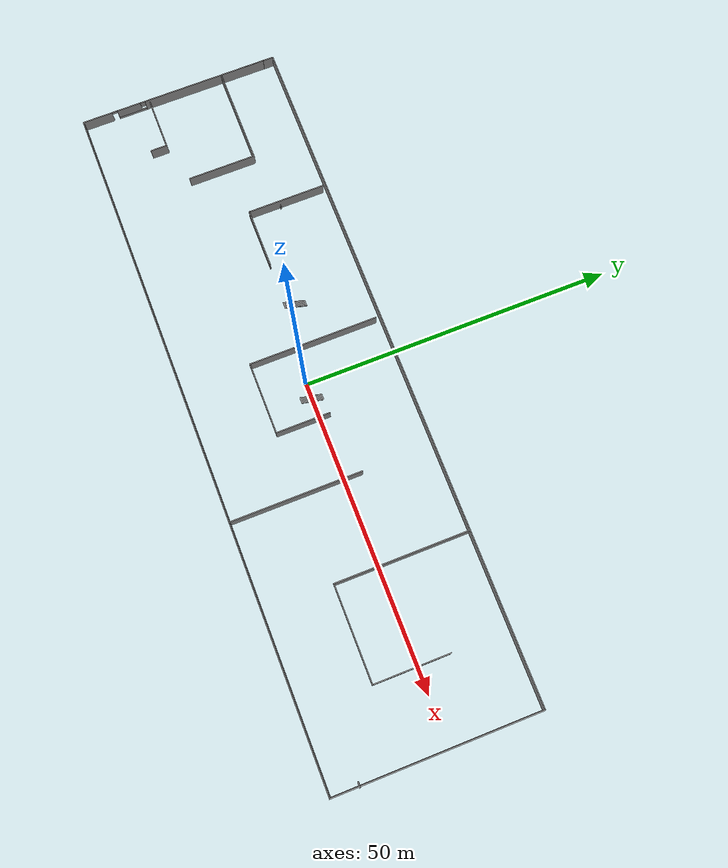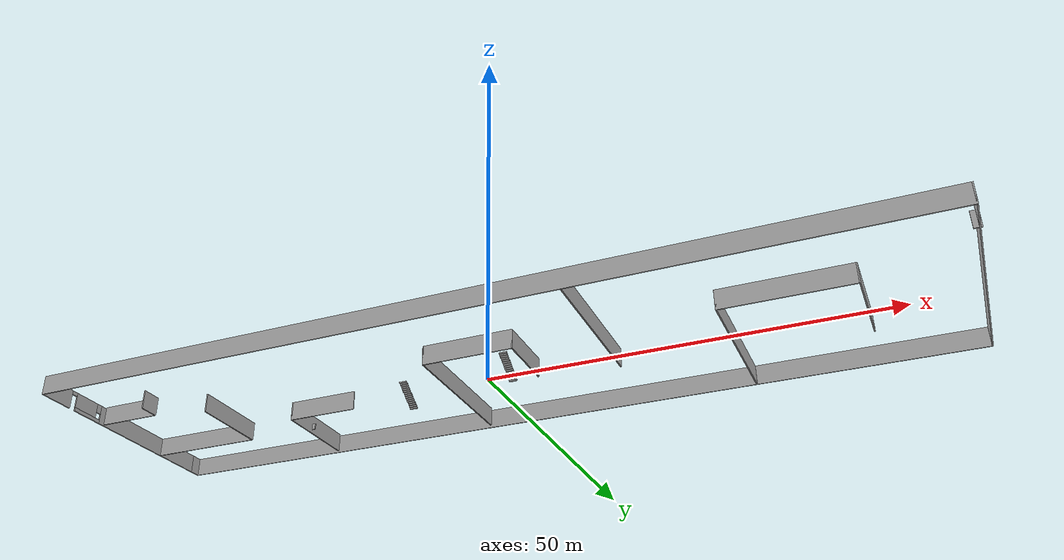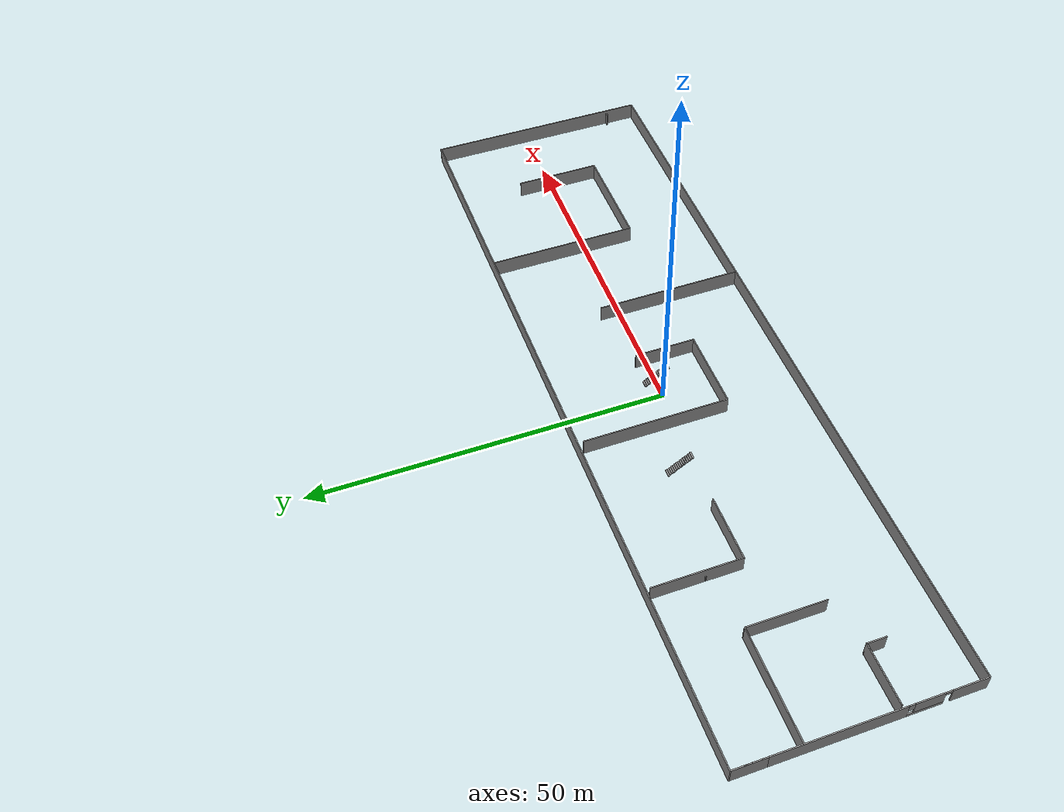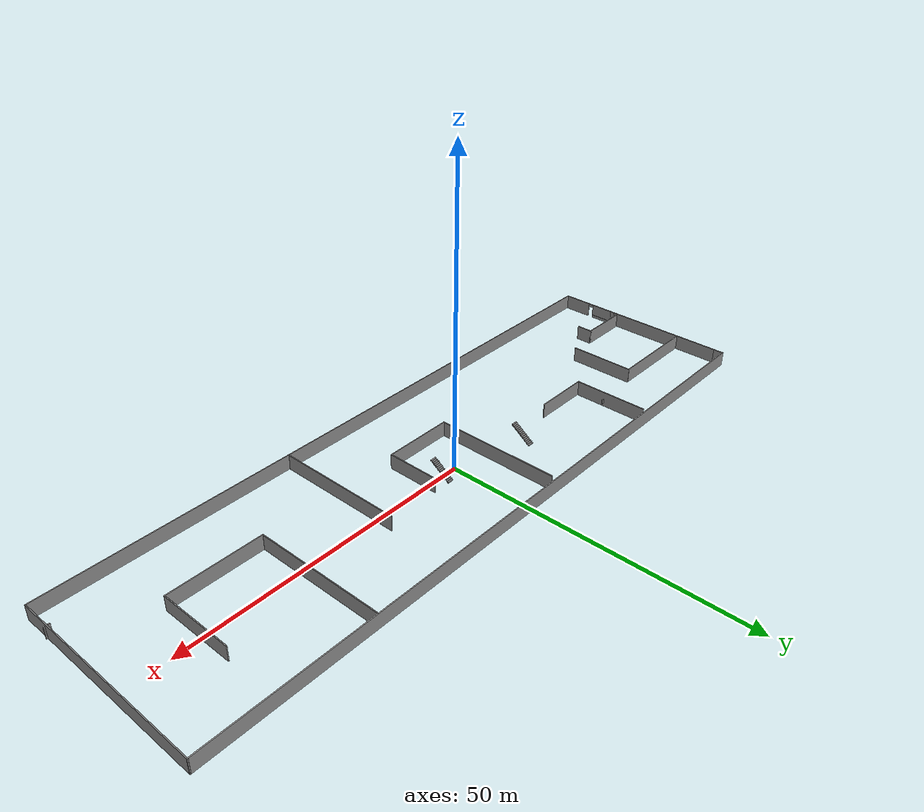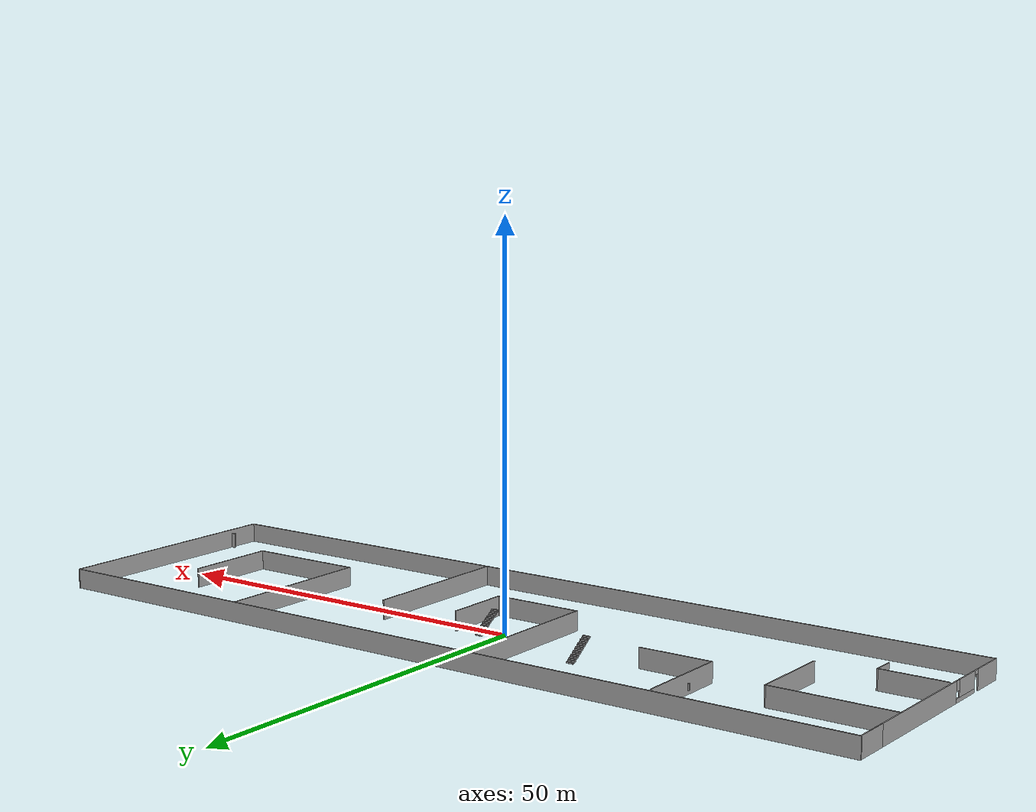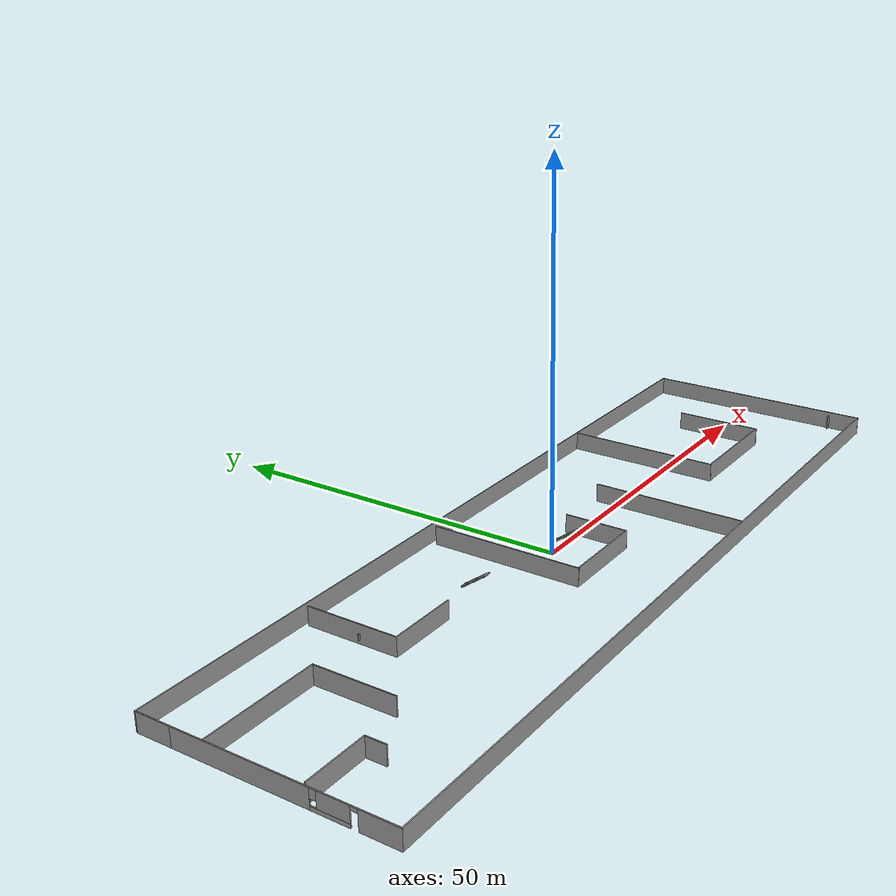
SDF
<?xml version='1.0'?>
<sdf version='1.7'>
  <model name='room1'>
    <pose>1.9848 -1.84188 0 0 -0 0</pose>
    <link name='Door_3'>
      <collision name='Door_3_Collision'>
        <geometry>
          <box>
            <size>0.9 0.17 2</size>
          </box>
        </geometry>
        <pose>0 0 1 0 -0 0</pose>
      </collision>
      <visual name='Door_3_Visual'>
        <pose>0 0 1 0 -0 0</pose>
        <geometry>
          <box>
            <size>0.9 0.17 2</size>
          </box>
        </geometry>
        <material>
          <script>
            <uri>file://media/materials/scripts/gazebo.material</uri>
            <name>Gazebo/Grey</name>
          </script>
        </material>
      </visual>
      <pose>55.6122 -11.8671 0 0 -0 0</pose>
    </link>
    <link name='Stairs_3'>
      <visual name='Stairs_3_Visual_0'>
        <pose>0.729382 3.42545 0.083333 0 -0 0</pose>
        <geometry>
          <box>
            <size>1 0.233333 0.166667</size>
          </box>
        </geometry>
        <material>
          <script>
            <uri>file://media/materials/scripts/gazebo.material</uri>
            <name>Gazebo/Grey</name>
          </script>
          <ambient>1 1 1 1</ambient>
        </material>
        <meta>
          <layer>0</layer>
        </meta>
      </visual>
      <collision name='Stairs_3_Collision_0'>
        <geometry>
          <box>
            <size>1 0.233333 0.166667</size>
          </box>
        </geometry>
        <pose>0.729382 3.42545 0.083333 0 -0 0</pose>
      </collision>
      <visual name='Stairs_3_Visual_1'>
        <pose>0.729382 3.19211 0.25 0 -0 0</pose>
        <geometry>
          <box>
            <size>1 0.233333 0.166667</size>
          </box>
        </geometry>
        <material>
          <script>
            <uri>file://media/materials/scripts/gazebo.material</uri>
            <name>Gazebo/Grey</name>
          </script>
          <ambient>1 1 1 1</ambient>
        </material>
        <meta>
          <layer>0</layer>
        </meta>
      </visual>
      <collision name='Stairs_3_Collision_1'>
        <geometry>
          <box>
            <size>1 0.233333 0.166667</size>
          </box>
        </geometry>
        <pose>0.729382 3.19211 0.25 0 -0 0</pose>
      </collision>
      <visual name='Stairs_3_Visual_2'>
        <pose>0.729382 2.95878 0.416667 0 -0 0</pose>
        <geometry>
          <box>
            <size>1 0.233333 0.166667</size>
          </box>
        </geometry>
        <material>
          <script>
            <uri>file://media/materials/scripts/gazebo.material</uri>
            <name>Gazebo/Grey</name>
          </script>
          <ambient>1 1 1 1</ambient>
        </material>
        <meta>
          <layer>0</layer>
        </meta>
      </visual>
      <collision name='Stairs_3_Collision_2'>
        <geometry>
          <box>
            <size>1 0.233333 0.166667</size>
          </box>
        </geometry>
        <pose>0.729382 2.95878 0.416667 0 -0 0</pose>
      </collision>
      <visual name='Stairs_3_Visual_3'>
        <pose>0.729382 2.72545 0.583333 0 -0 0</pose>
        <geometry>
          <box>
            <size>1 0.233333 0.166667</size>
          </box>
        </geometry>
        <material>
          <script>
            <uri>file://media/materials/scripts/gazebo.material</uri>
            <name>Gazebo/Grey</name>
          </script>
          <ambient>1 1 1 1</ambient>
        </material>
        <meta>
          <layer>0</layer>
        </meta>
      </visual>
      <collision name='Stairs_3_Collision_3'>
        <geometry>
          <box>
            <size>1 0.233333 0.166667</size>
          </box>
        </geometry>
        <pose>0.729382 2.72545 0.583333 0 -0 0</pose>
      </collision>
      <visual name='Stairs_3_Visual_4'>
        <pose>0.729382 2.49211 0.75 0 -0 0</pose>
        <geometry>
          <box>
            <size>1 0.233333 0.166667</size>
          </box>
        </geometry>
        <material>
          <script>
            <uri>file://media/materials/scripts/gazebo.material</uri>
            <name>Gazebo/Grey</name>
          </script>
          <ambient>1 1 1 1</ambient>
        </material>
        <meta>
          <layer>0</layer>
        </meta>
      </visual>
      <collision name='Stairs_3_Collision_4'>
        <geometry>
          <box>
            <size>1 0.233333 0.166667</size>
          </box>
        </geometry>
        <pose>0.729382 2.49211 0.75 0 -0 0</pose>
      </collision>
      <visual name='Stairs_3_Visual_5'>
        <pose>0.729382 2.25878 0.916667 0 -0 0</pose>
        <geometry>
          <box>
            <size>1 0.233333 0.166667</size>
          </box>
        </geometry>
        <material>
          <script>
            <uri>file://media/materials/scripts/gazebo.material</uri>
            <name>Gazebo/Grey</name>
          </script>
          <ambient>1 1 1 1</ambient>
        </material>
        <meta>
          <layer>0</layer>
        </meta>
      </visual>
      <collision name='Stairs_3_Collision_5'>
        <geometry>
          <box>
            <size>1 0.233333 0.166667</size>
          </box>
        </geometry>
        <pose>0.729382 2.25878 0.916667 0 -0 0</pose>
      </collision>
      <visual name='Stairs_3_Visual_6'>
        <pose>0.729382 2.02545 1.08333 0 -0 0</pose>
        <geometry>
          <box>
            <size>1 0.233333 0.166667</size>
          </box>
        </geometry>
        <material>
          <script>
            <uri>file://media/materials/scripts/gazebo.material</uri>
            <name>Gazebo/Grey</name>
          </script>
          <ambient>1 1 1 1</ambient>
        </material>
        <meta>
          <layer>0</layer>
        </meta>
      </visual>
      <collision name='Stairs_3_Collision_6'>
        <geometry>
          <box>
            <size>1 0.233333 0.166667</size>
          </box>
        </geometry>
        <pose>0.729382 2.02545 1.08333 0 -0 0</pose>
      </collision>
      <visual name='Stairs_3_Visual_7'>
        <pose>0.729382 1.79211 1.25 0 -0 0</pose>
        <geometry>
          <box>
            <size>1 0.233333 0.166667</size>
          </box>
        </geometry>
        <material>
          <script>
            <uri>file://media/materials/scripts/gazebo.material</uri>
            <name>Gazebo/Grey</name>
          </script>
          <ambient>1 1 1 1</ambient>
        </material>
        <meta>
          <layer>0</layer>
        </meta>
      </visual>
      <collision name='Stairs_3_Collision_7'>
        <geometry>
          <box>
            <size>1 0.233333 0.166667</size>
          </box>
        </geometry>
        <pose>0.729382 1.79211 1.25 0 -0 0</pose>
      </collision>
      <visual name='Stairs_3_Visual_8'>
        <pose>0.729382 1.55878 1.41667 0 -0 0</pose>
        <geometry>
          <box>
            <size>1 0.233333 0.166667</size>
          </box>
        </geometry>
        <material>
          <script>
            <uri>file://media/materials/scripts/gazebo.material</uri>
            <name>Gazebo/Grey</name>
          </script>
          <ambient>1 1 1 1</ambient>
        </material>
        <meta>
          <layer>0</layer>
        </meta>
      </visual>
      <collision name='Stairs_3_Collision_8'>
        <geometry>
          <box>
            <size>1 0.233333 0.166667</size>
          </box>
        </geometry>
        <pose>0.729382 1.55878 1.41667 0 -0 0</pose>
      </collision>
      <visual name='Stairs_3_Visual_9'>
        <pose>0.729382 1.32545 1.58333 0 -0 0</pose>
        <geometry>
          <box>
            <size>1 0.233333 0.166667</size>
          </box>
        </geometry>
        <material>
          <script>
            <uri>file://media/materials/scripts/gazebo.material</uri>
            <name>Gazebo/Grey</name>
          </script>
          <ambient>1 1 1 1</ambient>
        </material>
        <meta>
          <layer>0</layer>
        </meta>
      </visual>
      <collision name='Stairs_3_Collision_9'>
        <geometry>
          <box>
            <size>1 0.233333 0.166667</size>
          </box>
        </geometry>
        <pose>0.729382 1.32545 1.58333 0 -0 0</pose>
      </collision>
      <visual name='Stairs_3_Visual_10'>
        <pose>0.729382 1.09211 1.75 0 -0 0</pose>
        <geometry>
          <box>
            <size>1 0.233333 0.166667</size>
          </box>
        </geometry>
        <material>
          <script>
            <uri>file://media/materials/scripts/gazebo.material</uri>
            <name>Gazebo/Grey</name>
          </script>
          <ambient>1 1 1 1</ambient>
        </material>
        <meta>
          <layer>0</layer>
        </meta>
      </visual>
      <collision name='Stairs_3_Collision_10'>
        <geometry>
          <box>
            <size>1 0.233333 0.166667</size>
          </box>
        </geometry>
        <pose>0.729382 1.09211 1.75 0 -0 0</pose>
      </collision>
      <visual name='Stairs_3_Visual_11'>
        <pose>0.729382 0.85878 1.91667 0 -0 0</pose>
        <geometry>
          <box>
            <size>1 0.233333 0.166667</size>
          </box>
        </geometry>
        <material>
          <script>
            <uri>file://media/materials/scripts/gazebo.material</uri>
            <name>Gazebo/Grey</name>
          </script>
          <ambient>1 1 1 1</ambient>
        </material>
        <meta>
          <layer>0</layer>
        </meta>
      </visual>
      <collision name='Stairs_3_Collision_11'>
        <geometry>
          <box>
            <size>1 0.233333 0.166667</size>
          </box>
        </geometry>
        <pose>0.729382 0.85878 1.91667 0 -0 0</pose>
      </collision>
      <visual name='Stairs_3_Visual_12'>
        <pose>0.729382 0.625446 2.08333 0 -0 0</pose>
        <geometry>
          <box>
            <size>1 0.233333 0.166667</size>
          </box>
        </geometry>
        <material>
          <script>
            <uri>file://media/materials/scripts/gazebo.material</uri>
            <name>Gazebo/Grey</name>
          </script>
          <ambient>1 1 1 1</ambient>
        </material>
        <meta>
          <layer>0</layer>
        </meta>
      </visual>
      <collision name='Stairs_3_Collision_12'>
        <geometry>
          <box>
            <size>1 0.233333 0.166667</size>
          </box>
        </geometry>
        <pose>0.729382 0.625446 2.08333 0 -0 0</pose>
      </collision>
      <visual name='Stairs_3_Visual_13'>
        <pose>0.729382 0.392113 2.25 0 -0 0</pose>
        <geometry>
          <box>
            <size>1 0.233333 0.166667</size>
          </box>
        </geometry>
        <material>
          <script>
            <uri>file://media/materials/scripts/gazebo.material</uri>
            <name>Gazebo/Grey</name>
          </script>
          <ambient>1 1 1 1</ambient>
        </material>
        <meta>
          <layer>0</layer>
        </meta>
      </visual>
      <collision name='Stairs_3_Collision_13'>
        <geometry>
          <box>
            <size>1 0.233333 0.166667</size>
          </box>
        </geometry>
        <pose>0.729382 0.392113 2.25 0 -0 0</pose>
      </collision>
      <visual name='Stairs_3_Visual_14'>
        <pose>0.729382 0.15878 2.41667 0 -0 0</pose>
        <geometry>
          <box>
            <size>1 0.233333 0.166667</size>
          </box>
        </geometry>
        <material>
          <script>
            <uri>file://media/materials/scripts/gazebo.material</uri>
            <name>Gazebo/Grey</name>
          </script>
          <ambient>1 1 1 1</ambient>
        </material>
        <meta>
          <layer>0</layer>
        </meta>
      </visual>
      <collision name='Stairs_3_Collision_14'>
        <geometry>
          <box>
            <size>1 0.233333 0.166667</size>
          </box>
        </geometry>
        <pose>0.729382 0.15878 2.41667 0 -0 0</pose>
      </collision>
    </link>
    <link name='Stairs_4'>
      <visual name='Stairs_4_Visual_0'>
        <pose>-14.5295 6.37878 0.083333 0 -0 0</pose>
        <geometry>
          <box>
            <size>1 0.233333 0.166667</size>
          </box>
        </geometry>
        <material>
          <script>
            <uri>file://media/materials/scripts/gazebo.material</uri>
            <name>Gazebo/Grey</name>
          </script>
          <ambient>1 1 1 1</ambient>
        </material>
        <meta>
          <layer>0</layer>
        </meta>
      </visual>
      <collision name='Stairs_4_Collision_0'>
        <geometry>
          <box>
            <size>1 0.233333 0.166667</size>
          </box>
        </geometry>
        <pose>-14.5295 6.37878 0.083333 0 -0 0</pose>
      </collision>
      <visual name='Stairs_4_Visual_1'>
        <pose>-14.5295 6.14545 0.25 0 -0 0</pose>
        <geometry>
          <box>
            <size>1 0.233333 0.166667</size>
          </box>
        </geometry>
        <material>
          <script>
            <uri>file://media/materials/scripts/gazebo.material</uri>
            <name>Gazebo/Grey</name>
          </script>
          <ambient>1 1 1 1</ambient>
        </material>
        <meta>
          <layer>0</layer>
        </meta>
      </visual>
      <collision name='Stairs_4_Collision_1'>
        <geometry>
          <box>
            <size>1 0.233333 0.166667</size>
          </box>
        </geometry>
        <pose>-14.5295 6.14545 0.25 0 -0 0</pose>
      </collision>
      <visual name='Stairs_4_Visual_2'>
        <pose>-14.5295 5.91212 0.416667 0 -0 0</pose>
        <geometry>
          <box>
            <size>1 0.233333 0.166667</size>
          </box>
        </geometry>
        <material>
          <script>
            <uri>file://media/materials/scripts/gazebo.material</uri>
            <name>Gazebo/Grey</name>
          </script>
          <ambient>1 1 1 1</ambient>
        </material>
        <meta>
          <layer>0</layer>
        </meta>
      </visual>
      <collision name='Stairs_4_Collision_2'>
        <geometry>
          <box>
            <size>1 0.233333 0.166667</size>
          </box>
        </geometry>
        <pose>-14.5295 5.91212 0.416667 0 -0 0</pose>
      </collision>
      <visual name='Stairs_4_Visual_3'>
        <pose>-14.5295 5.67879 0.583333 0 -0 0</pose>
        <geometry>
          <box>
            <size>1 0.233333 0.166667</size>
          </box>
        </geometry>
        <material>
          <script>
            <uri>file://media/materials/scripts/gazebo.material</uri>
            <name>Gazebo/Grey</name>
          </script>
          <ambient>1 1 1 1</ambient>
        </material>
        <meta>
          <layer>0</layer>
        </meta>
      </visual>
      <collision name='Stairs_4_Collision_3'>
        <geometry>
          <box>
            <size>1 0.233333 0.166667</size>
          </box>
        </geometry>
        <pose>-14.5295 5.67879 0.583333 0 -0 0</pose>
      </collision>
      <visual name='Stairs_4_Visual_4'>
        <pose>-14.5295 5.44545 0.75 0 -0 0</pose>
        <geometry>
          <box>
            <size>1 0.233333 0.166667</size>
          </box>
        </geometry>
        <material>
          <script>
            <uri>file://media/materials/scripts/gazebo.material</uri>
            <name>Gazebo/Grey</name>
          </script>
          <ambient>1 1 1 1</ambient>
        </material>
        <meta>
          <layer>0</layer>
        </meta>
      </visual>
      <collision name='Stairs_4_Collision_4'>
        <geometry>
          <box>
            <size>1 0.233333 0.166667</size>
          </box>
        </geometry>
        <pose>-14.5295 5.44545 0.75 0 -0 0</pose>
      </collision>
      <visual name='Stairs_4_Visual_5'>
        <pose>-14.5295 5.21212 0.916667 0 -0 0</pose>
        <geometry>
          <box>
            <size>1 0.233333 0.166667</size>
          </box>
        </geometry>
        <material>
          <script>
            <uri>file://media/materials/scripts/gazebo.material</uri>
            <name>Gazebo/Grey</name>
          </script>
          <ambient>1 1 1 1</ambient>
        </material>
        <meta>
          <layer>0</layer>
        </meta>
      </visual>
      <collision name='Stairs_4_Collision_5'>
        <geometry>
          <box>
            <size>1 0.233333 0.166667</size>
          </box>
        </geometry>
        <pose>-14.5295 5.21212 0.916667 0 -0 0</pose>
      </collision>
      <visual name='Stairs_4_Visual_6'>
        <pose>-14.5295 4.97879 1.08333 0 -0 0</pose>
        <geometry>
          <box>
            <size>1 0.233333 0.166667</size>
          </box>
        </geometry>
        <material>
          <script>
            <uri>file://media/materials/scripts/gazebo.material</uri>
            <name>Gazebo/Grey</name>
          </script>
          <ambient>1 1 1 1</ambient>
        </material>
        <meta>
          <layer>0</layer>
        </meta>
      </visual>
      <collision name='Stairs_4_Collision_6'>
        <geometry>
          <box>
            <size>1 0.233333 0.166667</size>
          </box>
        </geometry>
        <pose>-14.5295 4.97879 1.08333 0 -0 0</pose>
      </collision>
      <visual name='Stairs_4_Visual_7'>
        <pose>-14.5295 4.74545 1.25 0 -0 0</pose>
        <geometry>
          <box>
            <size>1 0.233333 0.166667</size>
          </box>
        </geometry>
        <material>
          <script>
            <uri>file://media/materials/scripts/gazebo.material</uri>
            <name>Gazebo/Grey</name>
          </script>
          <ambient>1 1 1 1</ambient>
        </material>
        <meta>
          <layer>0</layer>
        </meta>
      </visual>
      <collision name='Stairs_4_Collision_7'>
        <geometry>
          <box>
            <size>1 0.233333 0.166667</size>
          </box>
        </geometry>
        <pose>-14.5295 4.74545 1.25 0 -0 0</pose>
      </collision>
      <visual name='Stairs_4_Visual_8'>
        <pose>-14.5295 4.51212 1.41667 0 -0 0</pose>
        <geometry>
          <box>
            <size>1 0.233333 0.166667</size>
          </box>
        </geometry>
        <material>
          <script>
            <uri>file://media/materials/scripts/gazebo.material</uri>
            <name>Gazebo/Grey</name>
          </script>
          <ambient>1 1 1 1</ambient>
        </material>
        <meta>
          <layer>0</layer>
        </meta>
      </visual>
      <collision name='Stairs_4_Collision_8'>
        <geometry>
          <box>
            <size>1 0.233333 0.166667</size>
          </box>
        </geometry>
        <pose>-14.5295 4.51212 1.41667 0 -0 0</pose>
      </collision>
      <visual name='Stairs_4_Visual_9'>
        <pose>-14.5295 4.27879 1.58333 0 -0 0</pose>
        <geometry>
          <box>
            <size>1 0.233333 0.166667</size>
          </box>
        </geometry>
        <material>
          <script>
            <uri>file://media/materials/scripts/gazebo.material</uri>
            <name>Gazebo/Grey</name>
          </script>
          <ambient>1 1 1 1</ambient>
        </material>
        <meta>
          <layer>0</layer>
        </meta>
      </visual>
      <collision name='Stairs_4_Collision_9'>
        <geometry>
          <box>
            <size>1 0.233333 0.166667</size>
          </box>
        </geometry>
        <pose>-14.5295 4.27879 1.58333 0 -0 0</pose>
      </collision>
      <visual name='Stairs_4_Visual_10'>
        <pose>-14.5295 4.04545 1.75 0 -0 0</pose>
        <geometry>
          <box>
            <size>1 0.233333 0.166667</size>
          </box>
        </geometry>
        <material>
          <script>
            <uri>file://media/materials/scripts/gazebo.material</uri>
            <name>Gazebo/Grey</name>
          </script>
          <ambient>1 1 1 1</ambient>
        </material>
        <meta>
          <layer>0</layer>
        </meta>
      </visual>
      <collision name='Stairs_4_Collision_10'>
        <geometry>
          <box>
            <size>1 0.233333 0.166667</size>
          </box>
        </geometry>
        <pose>-14.5295 4.04545 1.75 0 -0 0</pose>
      </collision>
      <visual name='Stairs_4_Visual_11'>
        <pose>-14.5295 3.81212 1.91667 0 -0 0</pose>
        <geometry>
          <box>
            <size>1 0.233333 0.166667</size>
          </box>
        </geometry>
        <material>
          <script>
            <uri>file://media/materials/scripts/gazebo.material</uri>
            <name>Gazebo/Grey</name>
          </script>
          <ambient>1 1 1 1</ambient>
        </material>
        <meta>
          <layer>0</layer>
        </meta>
      </visual>
      <collision name='Stairs_4_Collision_11'>
        <geometry>
          <box>
            <size>1 0.233333 0.166667</size>
          </box>
        </geometry>
        <pose>-14.5295 3.81212 1.91667 0 -0 0</pose>
      </collision>
      <visual name='Stairs_4_Visual_12'>
        <pose>-14.5295 3.57878 2.08333 0 -0 0</pose>
        <geometry>
          <box>
            <size>1 0.233333 0.166667</size>
          </box>
        </geometry>
        <material>
          <script>
            <uri>file://media/materials/scripts/gazebo.material</uri>
            <name>Gazebo/Grey</name>
          </script>
          <ambient>1 1 1 1</ambient>
        </material>
        <meta>
          <layer>0</layer>
        </meta>
      </visual>
      <collision name='Stairs_4_Collision_12'>
        <geometry>
          <box>
            <size>1 0.233333 0.166667</size>
          </box>
        </geometry>
        <pose>-14.5295 3.57878 2.08333 0 -0 0</pose>
      </collision>
      <visual name='Stairs_4_Visual_13'>
        <pose>-14.5295 3.34545 2.25 0 -0 0</pose>
        <geometry>
          <box>
            <size>1 0.233333 0.166667</size>
          </box>
        </geometry>
        <material>
          <script>
            <uri>file://media/materials/scripts/gazebo.material</uri>
            <name>Gazebo/Grey</name>
          </script>
          <ambient>1 1 1 1</ambient>
        </material>
        <meta>
          <layer>0</layer>
        </meta>
      </visual>
      <collision name='Stairs_4_Collision_13'>
        <geometry>
          <box>
            <size>1 0.233333 0.166667</size>
          </box>
        </geometry>
        <pose>-14.5295 3.34545 2.25 0 -0 0</pose>
      </collision>
      <visual name='Stairs_4_Visual_14'>
        <pose>-14.5295 3.11212 2.41667 0 -0 0</pose>
        <geometry>
          <box>
            <size>1 0.233333 0.166667</size>
          </box>
        </geometry>
        <material>
          <script>
            <uri>file://media/materials/scripts/gazebo.material</uri>
            <name>Gazebo/Grey</name>
          </script>
          <ambient>1 1 1 1</ambient>
        </material>
        <meta>
          <layer>0</layer>
        </meta>
      </visual>
      <collision name='Stairs_4_Collision_14'>
        <geometry>
          <box>
            <size>1 0.233333 0.166667</size>
          </box>
        </geometry>
        <pose>-14.5295 3.11212 2.41667 0 -0 0</pose>
      </collision>
    </link>
    <link name='Wall_11'>
      <pose>-55.8 -0.875 0 0 -0 -1.5708</pose>
      <visual name='Wall_11_Visual_0'>
        <pose>-5.26429 0 1.25 0 -0 0</pose>
        <geometry>
          <box>
            <size>20.4714 0.15 2.5</size>
          </box>
        </geometry>
        <material>
          <script>
            <uri>file://media/materials/scripts/gazebo.material</uri>
            <name>Gazebo/Grey</name>
          </script>
          <ambient>1 1 1 1</ambient>
        </material>
        <meta>
          <layer>0</layer>
        </meta>
      </visual>
      <collision name='Wall_11_Collision_0'>
        <geometry>
          <box>
            <size>20.4714 0.15 2.5</size>
          </box>
        </geometry>
        <pose>-5.26429 0 1.25 0 -0 0</pose>
      </collision>
      <visual name='Wall_11_Visual_1'>
        <pose>13.0403 0 1.25 0 -0 0</pose>
        <geometry>
          <box>
            <size>4.91932 0.15 2.5</size>
          </box>
        </geometry>
        <material>
          <script>
            <uri>file://media/materials/scripts/gazebo.material</uri>
            <name>Gazebo/Grey</name>
          </script>
          <ambient>1 1 1 1</ambient>
        </material>
        <meta>
          <layer>0</layer>
        </meta>
      </visual>
      <collision name='Wall_11_Collision_1'>
        <geometry>
          <box>
            <size>4.91932 0.15 2.5</size>
          </box>
        </geometry>
        <pose>13.0403 0 1.25 0 -0 0</pose>
      </collision>
      <visual name='Wall_11_Visual_2'>
        <pose>7.32605 0 0.25 0 -0 0</pose>
        <geometry>
          <box>
            <size>4.70926 0.15 0.5</size>
          </box>
        </geometry>
        <material>
          <script>
            <uri>file://media/materials/scripts/gazebo.material</uri>
            <name>Gazebo/Grey</name>
          </script>
          <ambient>1 1 1 1</ambient>
        </material>
        <meta>
          <layer>0</layer>
        </meta>
      </visual>
      <collision name='Wall_11_Collision_2'>
        <geometry>
          <box>
            <size>4.70926 0.15 0.5</size>
          </box>
        </geometry>
        <pose>7.32605 0 0.25 0 -0 0</pose>
      </collision>
      <visual name='Wall_11_Visual_3'>
        <pose>7.72605 0 1.5 0 -0 0</pose>
        <geometry>
          <box>
            <size>3.90926 0.15 2</size>
          </box>
        </geometry>
        <material>
          <script>
            <uri>file://media/materials/scripts/gazebo.material</uri>
            <name>Gazebo/Grey</name>
          </script>
          <ambient>1 1 1 1</ambient>
        </material>
        <meta>
          <layer>0</layer>
        </meta>
      </visual>
      <collision name='Wall_11_Collision_3'>
        <geometry>
          <box>
            <size>3.90926 0.15 2</size>
          </box>
        </geometry>
        <pose>7.72605 0 1.5 0 -0 0</pose>
      </collision>
      <visual name='Wall_11_Visual_4'>
        <pose>5.37142 0 1.9 0 -0 0</pose>
        <geometry>
          <box>
            <size>0.8 0.15 1.2</size>
          </box>
        </geometry>
        <material>
          <script>
            <uri>file://media/materials/scripts/gazebo.material</uri>
            <name>Gazebo/Grey</name>
          </script>
          <ambient>1 1 1 1</ambient>
        </material>
        <meta>
          <layer>0</layer>
        </meta>
      </visual>
      <collision name='Wall_11_Collision_4'>
        <geometry>
          <box>
            <size>0.8 0.15 1.2</size>
          </box>
        </geometry>
        <pose>5.37142 0 1.9 0 -0 0</pose>
      </collision>
      <visual name='Wall_11_Visual_5'>
        <pose>10.1307 0 2.25 0 -0 0</pose>
        <geometry>
          <box>
            <size>0.9 0.15 0.5</size>
          </box>
        </geometry>
        <material>
          <script>
            <uri>file://media/materials/scripts/gazebo.material</uri>
            <name>Gazebo/Grey</name>
          </script>
          <ambient>1 1 1 1</ambient>
        </material>
        <meta>
          <layer>0</layer>
        </meta>
      </visual>
      <collision name='Wall_11_Collision_5'>
        <geometry>
          <box>
            <size>0.9 0.15 0.5</size>
          </box>
        </geometry>
        <pose>10.1307 0 2.25 0 -0 0</pose>
      </collision>
    </link>
    <link name='Wall_12'>
      <collision name='Wall_12_Collision'>
        <geometry>
          <box>
            <size>111.75 0.15 2.5</size>
          </box>
        </geometry>
        <pose>0 0 1.25 0 -0 0</pose>
      </collision>
      <visual name='Wall_12_Visual'>
        <pose>0 0 1.25 0 -0 0</pose>
        <geometry>
          <box>
            <size>111.75 0.15 2.5</size>
          </box>
        </geometry>
        <material>
          <script>
            <uri>file://media/materials/scripts/gazebo.material</uri>
            <name>Gazebo/Grey</name>
          </script>
          <ambient>1 1 1 1</ambient>
        </material>
        <meta>
          <layer>0</layer>
        </meta>
      </visual>
      <pose>-1e-06 -16.3 0 0 -0 0</pose>
    </link>
    <link name='Wall_13'>
      <collision name='Wall_13_Collision'>
        <geometry>
          <box>
            <size>32.75 0.15 2.5</size>
          </box>
        </geometry>
        <pose>0 0 1.25 0 -0 0</pose>
      </collision>
      <visual name='Wall_13_Visual'>
        <pose>0 0 1.25 0 -0 0</pose>
        <geometry>
          <box>
            <size>32.75 0.15 2.5</size>
          </box>
        </geometry>
        <material>
          <script>
            <uri>file://media/materials/scripts/gazebo.material</uri>
            <name>Gazebo/Grey</name>
          </script>
          <ambient>1 1 1 1</ambient>
        </material>
        <meta>
          <layer>0</layer>
        </meta>
      </visual>
      <pose>55.8 0 0 0 -0 1.5708</pose>
    </link>
    <link name='Wall_14'>
      <collision name='Wall_14_Collision'>
        <geometry>
          <box>
            <size>111.75 0.15 2.5</size>
          </box>
        </geometry>
        <pose>0 0 1.25 0 -0 0</pose>
      </collision>
      <visual name='Wall_14_Visual'>
        <pose>0 0 1.25 0 -0 0</pose>
        <geometry>
          <box>
            <size>111.75 0.15 2.5</size>
          </box>
        </geometry>
        <material>
          <script>
            <uri>file://media/materials/scripts/gazebo.material</uri>
            <name>Gazebo/Grey</name>
          </script>
          <ambient>1 1 1 1</ambient>
        </material>
        <meta>
          <layer>0</layer>
        </meta>
      </visual>
      <pose>-1e-06 16.3 0 0 -0 3.14159</pose>
    </link>
    <link name='Wall_15'>
      <collision name='Wall_15_Collision'>
        <geometry>
          <box>
            <size>4.75 0.15 2.5</size>
          </box>
        </geometry>
        <pose>0 0 1.25 0 -0 0</pose>
      </collision>
      <visual name='Wall_15_Visual'>
        <pose>0 0 1.25 0 -0 0</pose>
        <geometry>
          <box>
            <size>4.75 0.15 2.5</size>
          </box>
        </geometry>
        <material>
          <script>
            <uri>file://media/materials/scripts/gazebo.material</uri>
            <name>Gazebo/Grey</name>
          </script>
          <ambient>1 1 1 1</ambient>
        </material>
        <meta>
          <layer>0</layer>
        </meta>
      </visual>
      <pose>-55.8 14 0 0 -0 -1.5708</pose>
    </link>
    <link name='Wall_17'>
      <collision name='Wall_17_Collision'>
        <geometry>
          <box>
            <size>21 0.15 2.5</size>
          </box>
        </geometry>
        <pose>0 0 1.25 0 -0 0</pose>
      </collision>
      <visual name='Wall_17_Visual'>
        <pose>0 0 1.25 0 -0 0</pose>
        <geometry>
          <box>
            <size>21 0.15 2.5</size>
          </box>
        </geometry>
        <material>
          <script>
            <uri>file://media/materials/scripts/gazebo.material</uri>
            <name>Gazebo/Grey</name>
          </script>
          <ambient>1 1 1 1</ambient>
        </material>
        <meta>
          <layer>0</layer>
        </meta>
      </visual>
      <pose>14.2655 -5.67955 0 0 -0 -1.5708</pose>
    </link>
    <link name='Wall_19'>
      <collision name='Wall_19_Collision'>
        <geometry>
          <box>
            <size>15.75 0.15 2.5</size>
          </box>
        </geometry>
        <pose>0 0 1.25 0 -0 0</pose>
      </collision>
      <visual name='Wall_19_Visual'>
        <pose>0 0 1.25 0 -0 0</pose>
        <geometry>
          <box>
            <size>15.75 0.15 2.5</size>
          </box>
        </geometry>
        <material>
          <script>
            <uri>file://media/materials/scripts/gazebo.material</uri>
            <name>Gazebo/Grey</name>
          </script>
          <ambient>1 1 1 1</ambient>
        </material>
        <meta>
          <layer>0</layer>
        </meta>
      </visual>
      <pose>-47.9532 7.32962 0 0 -0 0</pose>
    </link>
    <link name='Wall_20'>
      <collision name='Wall_20_Collision'>
        <geometry>
          <box>
            <size>11 0.15 2.5</size>
          </box>
        </geometry>
        <pose>0 0 1.25 0 -0 0</pose>
      </collision>
      <visual name='Wall_20_Visual'>
        <pose>0 0 1.25 0 -0 0</pose>
        <geometry>
          <box>
            <size>11 0.15 2.5</size>
          </box>
        </geometry>
        <material>
          <script>
            <uri>file://media/materials/scripts/gazebo.material</uri>
            <name>Gazebo/Grey</name>
          </script>
          <ambient>1 1 1 1</ambient>
        </material>
        <meta>
          <layer>0</layer>
        </meta>
      </visual>
      <pose>-40.1532 1.90462 0 0 -0 -1.5708</pose>
    </link>
    <link name='Wall_22'>
      <collision name='Wall_22_Collision'>
        <geometry>
          <box>
            <size>12.5 0.15 2.5</size>
          </box>
        </geometry>
        <pose>0 0 1.25 0 -0 0</pose>
      </collision>
      <visual name='Wall_22_Visual'>
        <pose>0 0 1.25 0 -0 0</pose>
        <geometry>
          <box>
            <size>12.5 0.15 2.5</size>
          </box>
        </geometry>
        <material>
          <script>
            <uri>file://media/materials/scripts/gazebo.material</uri>
            <name>Gazebo/Grey</name>
          </script>
          <ambient>1 1 1 1</ambient>
        </material>
        <meta>
          <layer>0</layer>
        </meta>
      </visual>
      <pose>-31.2651 9.52241 0 0 -0 -1.5708</pose>
    </link>
    <link name='Wall_23'>
      <collision name='Wall_23_Collision'>
        <geometry>
          <box>
            <size>9.5 0.15 2.5</size>
          </box>
        </geometry>
        <pose>0 0 1.25 0 -0 0</pose>
      </collision>
      <visual name='Wall_23_Visual'>
        <pose>0 0 1.25 0 -0 0</pose>
        <geometry>
          <box>
            <size>9.5 0.15 2.5</size>
          </box>
        </geometry>
        <material>
          <script>
            <uri>file://media/materials/scripts/gazebo.material</uri>
            <name>Gazebo/Grey</name>
          </script>
          <ambient>1 1 1 1</ambient>
        </material>
        <meta>
          <layer>0</layer>
        </meta>
      </visual>
      <pose>-26.5901 3.34741 0 0 -0 0</pose>
    </link>
    <link name='Wall_25'>
      <collision name='Wall_25_Collision'>
        <geometry>
          <box>
            <size>8.5 0.15 2.5</size>
          </box>
        </geometry>
        <pose>0 0 1.25 0 -0 0</pose>
      </collision>
      <visual name='Wall_25_Visual'>
        <pose>0 0 1.25 0 -0 0</pose>
        <geometry>
          <box>
            <size>8.5 0.15 2.5</size>
          </box>
        </geometry>
        <material>
          <script>
            <uri>file://media/materials/scripts/gazebo.material</uri>
            <name>Gazebo/Grey</name>
          </script>
          <ambient>1 1 1 1</ambient>
        </material>
        <meta>
          <layer>0</layer>
        </meta>
      </visual>
      <pose>-51.209 -5.09901 0 0 -0 0</pose>
    </link>
    <link name='Wall_26'>
      <collision name='Wall_26_Collision'>
        <geometry>
          <box>
            <size>2.75 0.15 2.5</size>
          </box>
        </geometry>
        <pose>0 0 1.25 0 -0 0</pose>
      </collision>
      <visual name='Wall_26_Visual'>
        <pose>0 0 1.25 0 -0 0</pose>
        <geometry>
          <box>
            <size>2.75 0.15 2.5</size>
          </box>
        </geometry>
        <material>
          <script>
            <uri>file://media/materials/scripts/gazebo.material</uri>
            <name>Gazebo/Grey</name>
          </script>
          <ambient>1 1 1 1</ambient>
        </material>
        <meta>
          <layer>0</layer>
        </meta>
      </visual>
      <pose>-47.034 -6.39901 0 0 -0 -1.5708</pose>
    </link>
    <link name='Wall_28'>
      <collision name='Wall_28_Collision'>
        <geometry>
          <box>
            <size>20.75 0.15 2.5</size>
          </box>
        </geometry>
        <pose>0 0 1.25 0 -0 0</pose>
      </collision>
      <visual name='Wall_28_Visual'>
        <pose>0 0 1.25 0 -0 0</pose>
        <geometry>
          <box>
            <size>20.75 0.15 2.5</size>
          </box>
        </geometry>
        <material>
          <script>
            <uri>file://media/materials/scripts/gazebo.material</uri>
            <name>Gazebo/Grey</name>
          </script>
          <ambient>1 1 1 1</ambient>
        </material>
        <meta>
          <layer>0</layer>
        </meta>
      </visual>
      <pose>-7.51535 5.1513 0 0 -0 -1.5708</pose>
    </link>
    <link name='Wall_29'>
      <collision name='Wall_29_Collision'>
        <geometry>
          <box>
            <size>11.75 0.15 2.5</size>
          </box>
        </geometry>
        <pose>0 0 1.25 0 -0 0</pose>
      </collision>
      <visual name='Wall_29_Visual'>
        <pose>0 0 1.25 0 -0 0</pose>
        <geometry>
          <box>
            <size>11.75 0.15 2.5</size>
          </box>
        </geometry>
        <material>
          <script>
            <uri>file://media/materials/scripts/gazebo.material</uri>
            <name>Gazebo/Grey</name>
          </script>
          <ambient>1 1 1 1</ambient>
        </material>
        <meta>
          <layer>0</layer>
        </meta>
      </visual>
      <pose>-1.71535 -5.1487 0 0 -0 0</pose>
    </link>
    <link name='Wall_30'>
      <collision name='Wall_30_Collision'>
        <geometry>
          <box>
            <size>8.75 0.15 2.5</size>
          </box>
        </geometry>
        <pose>0 0 1.25 0 -0 0</pose>
      </collision>
      <visual name='Wall_30_Visual'>
        <pose>0 0 1.25 0 -0 0</pose>
        <geometry>
          <box>
            <size>8.75 0.15 2.5</size>
          </box>
        </geometry>
        <material>
          <script>
            <uri>file://media/materials/scripts/gazebo.material</uri>
            <name>Gazebo/Grey</name>
          </script>
          <ambient>1 1 1 1</ambient>
        </material>
        <meta>
          <layer>0</layer>
        </meta>
      </visual>
      <pose>4.08465 -0.848698 0 0 -0 1.5708</pose>
    </link>
    <link name='Wall_32'>
      <collision name='Wall_32_Collision'>
        <geometry>
          <box>
            <size>21.5 0.15 2.5</size>
          </box>
        </geometry>
        <pose>0 0 1.25 0 -0 0</pose>
      </collision>
      <visual name='Wall_32_Visual'>
        <pose>0 0 1.25 0 -0 0</pose>
        <geometry>
          <box>
            <size>21.5 0.15 2.5</size>
          </box>
        </geometry>
        <material>
          <script>
            <uri>file://media/materials/scripts/gazebo.material</uri>
            <name>Gazebo/Grey</name>
          </script>
          <ambient>1 1 1 1</ambient>
        </material>
        <meta>
          <layer>0</layer>
        </meta>
      </visual>
      <pose>28.2939 5.51464 0 0 -0 -1.5708</pose>
    </link>
    <link name='Wall_33'>
      <collision name='Wall_33_Collision'>
        <geometry>
          <box>
            <size>15.5 0.15 2.5</size>
          </box>
        </geometry>
        <pose>0 0 1.25 0 -0 0</pose>
      </collision>
      <visual name='Wall_33_Visual'>
        <pose>0 0 1.25 0 -0 0</pose>
        <geometry>
          <box>
            <size>15.5 0.15 2.5</size>
          </box>
        </geometry>
        <material>
          <script>
            <uri>file://media/materials/scripts/gazebo.material</uri>
            <name>Gazebo/Grey</name>
          </script>
          <ambient>1 1 1 1</ambient>
        </material>
        <meta>
          <layer>0</layer>
        </meta>
      </visual>
      <pose>35.9689 -5.16036 0 0 -0 0</pose>
    </link>
    <link name='Wall_34'>
      <collision name='Wall_34_Collision'>
        <geometry>
          <box>
            <size>12.25 0.15 2.5</size>
          </box>
        </geometry>
        <pose>0 0 1.25 0 -0 0</pose>
      </collision>
      <visual name='Wall_34_Visual'>
        <pose>0 0 1.25 0 -0 0</pose>
        <geometry>
          <box>
            <size>12.25 0.15 2.5</size>
          </box>
        </geometry>
        <material>
          <script>
            <uri>file://media/materials/scripts/gazebo.material</uri>
            <name>Gazebo/Grey</name>
          </script>
          <ambient>1 1 1 1</ambient>
        </material>
        <meta>
          <layer>0</layer>
        </meta>
      </visual>
      <pose>43.6439 0.889636 0 0 -0 1.5708</pose>
    </link>
    <link name='Window_5'>
      <collision name='Window_5_Collision'>
        <geometry>
          <box>
            <size>0.8 0.17 0.8</size>
          </box>
        </geometry>
        <pose>0 0 0.4 0 -0 0</pose>
      </collision>
      <visual name='Window_5_Visual'>
        <pose>0 0 0.4 0 -0 0</pose>
        <geometry>
          <box>
            <size>0.8 0.17 0.8</size>
          </box>
        </geometry>
        <material>
          <script>
            <uri>file://media/materials/scripts/gazebo.material</uri>
            <name>Gazebo/Grey</name>
          </script>
        </material>
      </visual>
      <pose>-31.1421 8.43712 0.5 0 -0 0</pose>
    </link>
    <static>1</static>
  </model>
</sdf>
